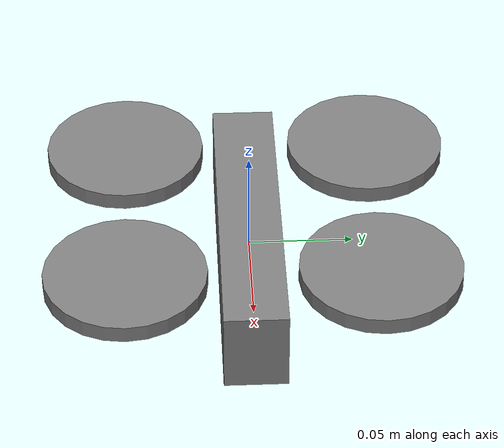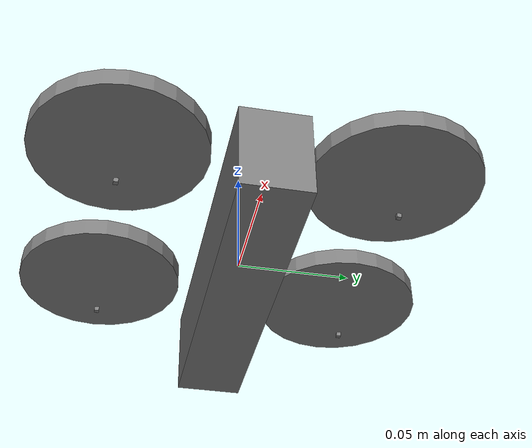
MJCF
<mujoco model="Quadcopter">
    <compiler angle="degree" coordinate="local" inertiafromgeom="false"/>
    <worldbody>
        <body name="chassis" pos="0 0 0">
            <geom type="box" size="0.078 0.015 0.02" pos="0 0 0"/>
            <inertial mass="0.46" diaginertia="0.0005 0.0007 0.0008"/>
            <!--      1号转子-->
            <body name="rotor_arm0" pos="0.047 0.059 0" quat="1 0 0 0">
                <geom type="box" size="0.001 0.001 0.001"/>
                <inertial mass="0.0000001" diaginertia="0.0000001 0.0000001 0.0000001"/>
                <body name="rotor0" pos="0 0 0.02" quat="1 0 0 0">
                    <geom type="cylinder" size="0.0381 0.004"/>
                    <inertial mass="0.0000001" diaginertia="0.0000001 0.0000001 0.0000001"/>
                </body>
            </body>
            <!--      2号转子-->
            <body name="rotor_arm1" pos="-0.047 0.059 0" quat="1 0 0 0">
                <geom type="box" size="0.001 0.001 0.001"/>
                <inertial mass="0.0000001" diaginertia="0.0000001 0.0000001 0.0000001"/>
                <body name="rotor1" pos="0 0 0.02" quat="1 0 0 0">
                    <geom type="cylinder" size="0.0381 0.004"/>
                    <inertial mass="0.0000001" diaginertia="0.0000001 0.0000001 0.0000001"/>
                </body>
            </body>
            <!--      3号转子-->
            <body name="rotor_arm2" pos="-0.047 -0.059 0" quat="1 0 0 0">
                <geom type="box" size="0.001 0.001 0.001"/>
                <inertial mass="0.0000001" diaginertia="0.0000001 0.0000001 0.0000001"/>
                <body name="rotor2" pos="0 0 0.02" quat="1 0 0 0">
                    <geom type="cylinder" size="0.0381 0.004"/>
                    <inertial mass="0.0000001" diaginertia="0.0000001 0.0000001 0.0000001"/>
                </body>
            </body>
            <!--      四号转子-->
            <body name="rotor_arm3" pos="0.047 -0.059 0" quat="1 0 0 0">
                <geom type="box" size="0.001 0.001 0.001"/>
                <inertial mass="0.0000001" diaginertia="0.0000001 0.0000001 0.0000001"/>
                <body name="rotor3" pos="0 0 0.02" quat="1 0 0 0">
                    <geom type="cylinder" size="0.0381 0.004"/>
                    <inertial mass="0.0000001" diaginertia="0.0000001 0.0000001 0.0000001"/>
                </body>
            </body>
        </body>
    </worldbody>
</mujoco>
